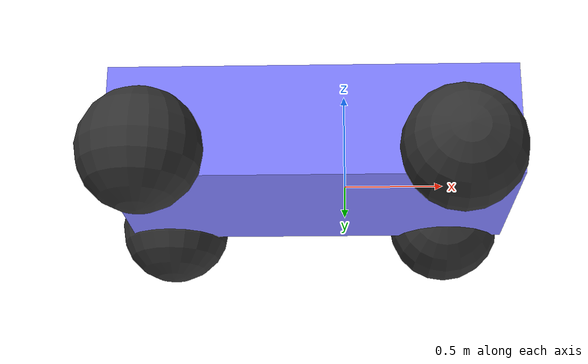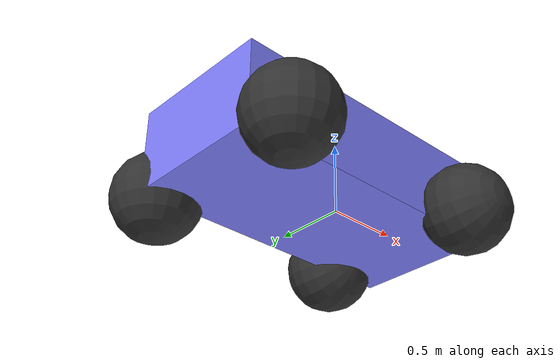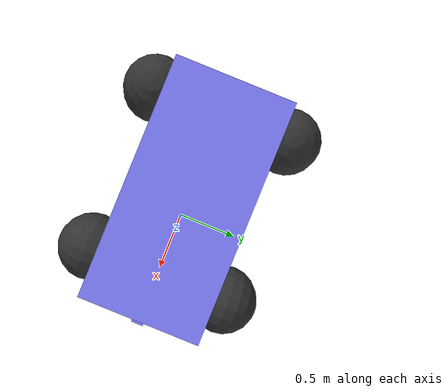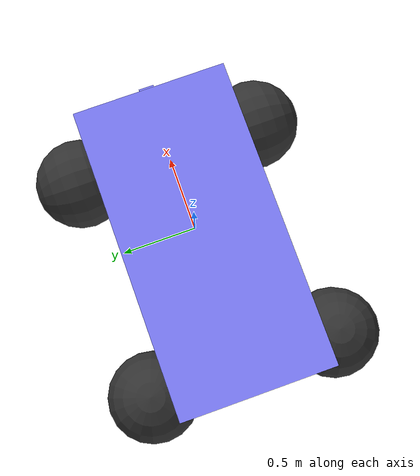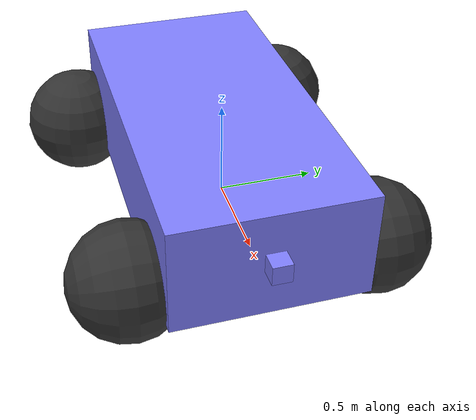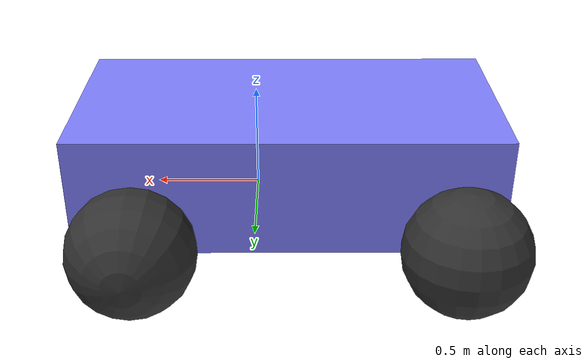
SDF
<?xml version="1.0" ?>
<sdf version="1.8">
    <model name='diff_drive'>

      <plugin filename="gz-sim-imu-system"
        name="gz::sim::systems::Imu">
      </plugin>

      <plugin
        filename="gz-sim-sensors-system"
        name="gz::sim::systems::Sensors">
        <render_engine>ogre2</render_engine>
      </plugin>

      <plugin
        filename="gz-sim-joint-state-publisher-system"
        name="gz::sim::systems::JointStatePublisher">
      </plugin>

      <plugin
        filename="gz-sim-pose-publisher-system"
        name="gz::sim::systems::PosePublisher">
        <publish_link_pose>true</publish_link_pose>
        <use_pose_vector_msg>true</use_pose_vector_msg>
        <static_publisher>true</static_publisher>
        <static_update_frequency>1</static_update_frequency>
      </plugin>

      <plugin
        filename="gz-sim-odometry-publisher-system"
        name="gz::sim::systems::OdometryPublisher">
        <odom_frame>diff_drive/odom</odom_frame>
        <robot_base_frame>diff_drive</robot_base_frame>
      </plugin>

      <plugin
        filename="ignition-gazebo-diff-drive-system"
        name="ignition::gazebo::systems::DiffDrive">
        <left_joint>left_wheel_joint</left_joint>
        <right_joint>right_wheel_joint</right_joint>
        <wheel_separation>1.25</wheel_separation>
        <wheel_radius>0.3</wheel_radius>
        <odom_publish_frequency>1</odom_publish_frequency>
        <max_linear_acceleration>2</max_linear_acceleration>
        <min_linear_acceleration>-2</min_linear_acceleration>
        <max_angular_acceleration>2</max_angular_acceleration>
        <min_angular_acceleration>-2</min_angular_acceleration>
        <max_linear_velocity>0.5</max_linear_velocity>
        <min_linear_velocity>-0.5</min_linear_velocity>
        <max_angular_velocity>1</max_angular_velocity>
        <min_angular_velocity>-1</min_angular_velocity>
      </plugin>

      <link name='chassis'>
        <pose>-0.151427 -0 0.175 0 -0 0</pose>
        <inertial>
          <mass>1.14395</mass>
          <inertia>
            <ixx>0.126164</ixx>
            <ixy>0</ixy>
            <ixz>0</ixz>
            <iyy>0.416519</iyy>
            <iyz>0</iyz>
            <izz>0.481014</izz>
          </inertia>
        </inertial>
        <visual name='visual_chassis'>
          <geometry>
            <box>
              <size>2.01142 1 0.568726</size>
            </box>
          </geometry>
          <material>
            <ambient>0.5 0.5 1.0 1</ambient>
            <diffuse>0.5 0.5 1.0 1</diffuse>
            <specular>0.0 0.0 1.0 1</specular>
          </material>
        </visual>
        <collision name='collision_chassis'>
          <geometry>
            <box>
              <size>2.01142 1 0.568726</size>
            </box>
          </geometry>
        </collision>
      </link>

      <link name="lidar_link">
        <pose>0.9 0 0.2 0 0 0</pose>
        <inertial>
          <mass>0.1</mass>
          <inertia>
            <ixx>0.000166667</ixx>
            <iyy>0.000166667</iyy>
            <izz>0.000166667</izz>
          </inertia>
        </inertial>
        <collision name="collision">
          <geometry>
            <box>
              <size>0.1 0.1 0.1</size>
            </box>
          </geometry>
        </collision>
        <visual name="visual">
          <geometry>
            <box>
              <size>0.1 0.1 0.1</size>
            </box>
          </geometry>
          <material>
            <ambient>0.5 0.5 1.0 1</ambient>
            <diffuse>0.5 0.5 1.0 1</diffuse>
            <specular>0.0 0.0 1.0 1</specular>
          </material>
        </visual>

        <sensor name='gpu_lidar1' type='gpu_lidar'>
          <topic>/diff_drive/lidar</topic>
          <update_rate>10</update_rate>
          <ignition_frame_id>diff_drive/lidar_link</ignition_frame_id>
          <ray>
            <scan>
                <horizontal>
                    <samples>640</samples>
                    <resolution>1</resolution>
                    <min_angle>-1.396263</min_angle>
                    <max_angle>1.396263</max_angle>
                </horizontal>
                <vertical>
                    <samples>1</samples>
                    <resolution>0.01</resolution>
                    <min_angle>0</min_angle>
                    <max_angle>0</max_angle>
                </vertical>
            </scan>
            <range>
                <min>0.08</min>
                <max>10.0</max>
                <resolution>0.01</resolution>
            </range>
          </ray>
          <always_on>1</always_on>
          <visualize>true</visualize>
        </sensor>

        <sensor name='imu_sensor' type='imu'>
          <ignition_frame_id>diff_drive/lidar_link</ignition_frame_id>
          <always_on>1</always_on>
          <update_rate>1000</update_rate>
          <visualize>1</visualize>
          <topic>imu</topic>
          <pose>0 0 0 0 0 0</pose>
        </sensor>

        <sensor name="depth" type="depth_camera">
          <ignition_frame_id>diff_drive/lidar_link</ignition_frame_id>
          <update_rate>6</update_rate>
          <always_on>0</always_on>
          <camera>
            <horizontal_fov>1.51843645</horizontal_fov>
            <image>
              <width>848</width>
              <height>480</height>
              <format>R_FLOAT32</format>
            </image>
            <clip>
              <near>0.1</near>
              <far>10</far>
            </clip>
            <lens>
              <intrinsics>
                <fx>421.61578369140625</fx>
                <fy>421.61578369140625</fy>
                <cx>422.2854309082031</cx>
                <cy>236.57237243652344</cy>
                <s>0</s>
              </intrinsics>
            </lens>
          </camera>
      </sensor>

      </link>

      <link name='left_wheel'>
        <pose>0.554283 0.625029 -0.025 -1.5707 0 0</pose>
        <inertial>
          <mass>2</mass>
          <inertia>
            <ixx>0.145833</ixx>
            <ixy>0</ixy>
            <ixz>0</ixz>
            <iyy>0.145833</iyy>
            <iyz>0</iyz>
            <izz>0.125</izz>
          </inertia>
        </inertial>
        <visual name='visual_left_wheel'>
          <geometry>
            <sphere>
              <radius>0.3</radius>
            </sphere>
          </geometry>
          <material>
            <ambient>0.2 0.2 0.2 1</ambient>
            <diffuse>0.2 0.2 0.2 1</diffuse>
            <specular>0.2 0.2 0.2 1</specular>
          </material>
        </visual>
        <collision name='collision_left_wheel'>
          <geometry>
            <sphere>
              <radius>0.3</radius>
            </sphere>
          </geometry>
        </collision>
      </link>

      <link name='right_wheel'>
        <pose>0.554282 -0.625029 -0.025 -1.5707 0 0</pose>
        <inertial>
          <mass>2</mass>
          <inertia>
            <ixx>0.145833</ixx>
            <ixy>0</ixy>
            <ixz>0</ixz>
            <iyy>0.145833</iyy>
            <iyz>0</iyz>
            <izz>0.125</izz>
          </inertia>
        </inertial>
        <visual name='visual_right_wheel'>
          <geometry>
            <sphere>
              <radius>0.3</radius>
            </sphere>
          </geometry>
          <material>
            <ambient>0.2 0.2 0.2 1</ambient>
            <diffuse>0.2 0.2 0.2 1</diffuse>
            <specular>0.2 0.2 0.2 1</specular>
          </material>
        </visual>
        <collision name='collision_right_wheel'>
          <geometry>
            <sphere>
              <radius>0.3</radius>
            </sphere>
          </geometry>
        </collision>
      </link>

      <link name='left_caster'>
        <pose>-0.957138 0.625029 -0.025 0 -0 0</pose>
        <inertial>
          <mass>2</mass>
          <inertia>
            <ixx>0.145833</ixx>
            <ixy>0</ixy>
            <ixz>0</ixz>
            <iyy>0.145833</iyy>
            <iyz>0</iyz>
            <izz>0.125</izz>
          </inertia>
        </inertial>
        <visual name='visual_caster'>
          <geometry>
            <sphere>
              <radius>0.3</radius>
            </sphere>
          </geometry>
          <material>
            <ambient>0.2 0.2 0.2 1</ambient>
            <diffuse>0.2 0.2 0.2 1</diffuse>
            <specular>0.2 0.2 0.2 1</specular>
          </material>
        </visual>
        <collision name='collision_caster'>
          <geometry>
            <sphere>
              <radius>0.3</radius>
            </sphere>
          </geometry>
        </collision>
      </link>

      <link name='right_caster'>
        <pose>-0.957138 -0.625029 -0.025 0 -0 0</pose>
        <inertial>
          <mass>2</mass>
          <inertia>
            <ixx>0.145833</ixx>
            <ixy>0</ixy>
            <ixz>0</ixz>
            <iyy>0.145833</iyy>
            <iyz>0</iyz>
            <izz>0.125</izz>
          </inertia>
        </inertial>
        <visual name='visual_caster'>
          <geometry>
            <sphere>
              <radius>0.3</radius>
            </sphere>
          </geometry>
          <material>
            <ambient>0.2 0.2 0.2 1</ambient>
            <diffuse>0.2 0.2 0.2 1</diffuse>
            <specular>0.2 0.2 0.2 1</specular>
          </material>
        </visual>
        <collision name='collision_caster'>
          <geometry>
            <sphere>
              <radius>0.3</radius>
            </sphere>
          </geometry>
        </collision>
      </link>

      <joint name='lidar_joint' type='fixed'>
        <parent>chassis</parent>
        <child>lidar_link</child>
      </joint>

      <joint name='left_wheel_joint' type='revolute'>
        <parent>chassis</parent>
        <child>left_wheel</child>
        <axis>
          <xyz>0 0 1</xyz>
          <limit>
            <lower>-1.79769e+308</lower>
            <upper>1.79769e+308</upper>
          </limit>
        </axis>
      </joint>

      <joint name='right_wheel_joint' type='revolute'>
        <parent>chassis</parent>
        <child>right_wheel</child>
        <axis>
          <xyz>0 0 1</xyz>
          <limit>
            <lower>-1.79769e+308</lower>
            <upper>1.79769e+308</upper>
          </limit>
        </axis>
      </joint>

      <joint name='left_caster_joint' type='ball'>
        <parent>chassis</parent>
        <child>left_caster</child>
      </joint>

      <joint name='right_caster_joint' type='ball'>
        <parent>chassis</parent>
        <child>right_caster</child>
      </joint>

    </model>
</sdf>
